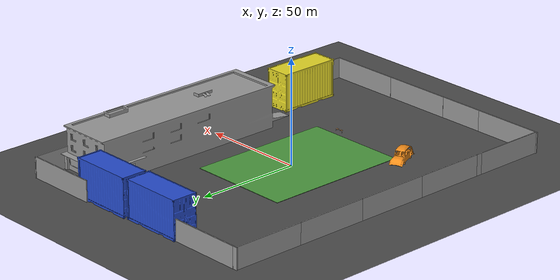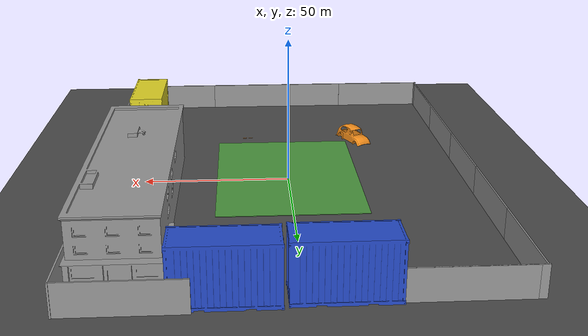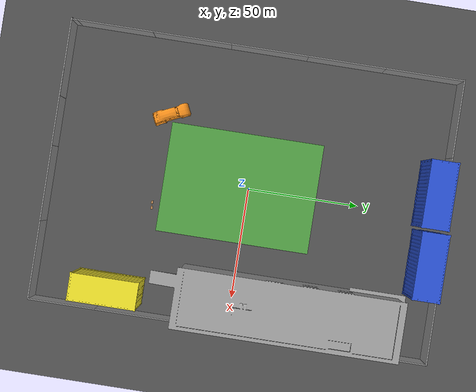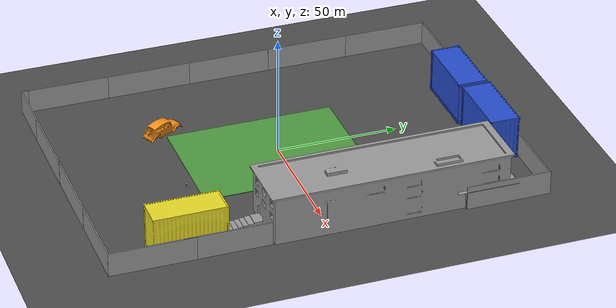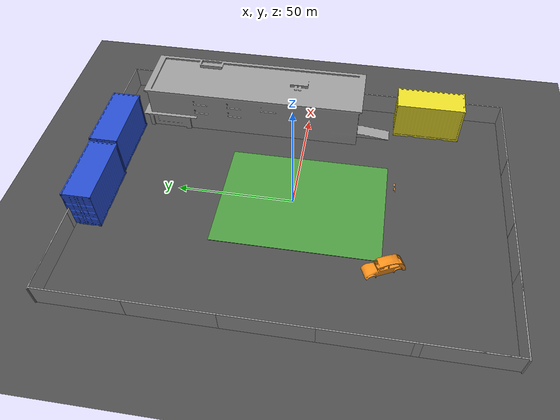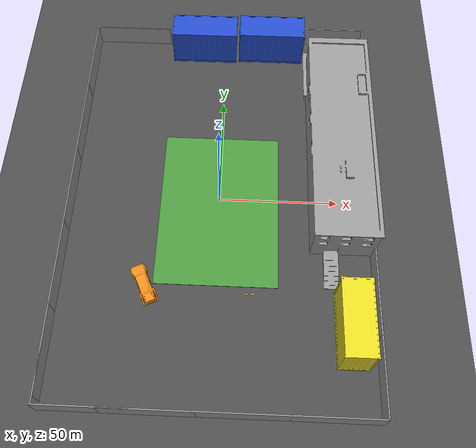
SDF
<sdf version="1.6">
 <world name="default">
  <light name="sun" type="directional">
   <pose>0 0 10 0 -0 0</pose>
   <diffuse>0.8 0.8 0.8 1</diffuse>
   <specular>0.2 0.2 0.2 1</specular>
   <attenuation>
    <range>1000</range>
    <constant>0.9</constant>
    <linear>0.01</linear>
    <quadratic>0.001</quadratic>
   </attenuation>
   <direction>-0.5 0.1 -0.9</direction>
  </light>
  <model name="ground_plane">
   <static>1</static>
   <link name="link">
    <collision name="collision">
     <geometry><plane><normal>0 0 1</normal><size>40000 40000</size></plane></geometry>
     <surface>
      <contact><collide_bitmask>65535</collide_bitmask></contact>
      <friction><ode><mu>100</mu><mu2>50</mu2></ode></friction>
     </surface>
    </collision>
    <visual name="visual">
     <cast_shadows>0</cast_shadows>
     <geometry><plane><normal>0 0 1</normal><size>130 180</size></plane></geometry>
     <material>
      <script><uri>file://media/materials/scripts/gazebo.material</uri><name>Gazebo/Road</name></script>
     </material>
    </visual>
   </link>
  </model>
  <gravity>0 0 -9.8</gravity>
  <magnetic_field>6e-06 2.3e-05 -4.2e-05</magnetic_field>
  <physics name="default_physics" default="0" type="ode">
   <max_step_size>0.001</max_step_size>
   <real_time_factor>1</real_time_factor>
   <real_time_update_rate>1000</real_time_update_rate>
  </physics>
  <scene><ambient>0.4 0.4 0.4 1</ambient><background>0.7 0.7 0.7 1</background><shadows>1</shadows></scene>
  <audio><device>default</device></audio>
  <spherical_coordinates>
   <surface_model>EARTH_WGS84</surface_model>
   <latitude_deg>0</latitude_deg>
   <longitude_deg>0</longitude_deg>
   <elevation>0</elevation>
   <heading_deg>0</heading_deg>
  </spherical_coordinates>
  <model name="grass_plane">
   <link name="link">
    <inertial>
     <mass>1</mass>
     <inertia><ixx>1</ixx><ixy>0</ixy><ixz>0</ixz><iyy>1</iyy><iyz>0</iyz><izz>1</izz></inertia>
    </inertial>
    <visual name="visual">
     <cast_shadows>0</cast_shadows>
     <geometry><box><size>50 70 0.2</size></box></geometry>
     <material>
      <script><uri>file://media/materials/scripts/gazebo.material</uri><name>Gazebo/Grass</name></script>
     </material>
    </visual>
    <collision name="collision">
     <geometry><box><size>10 30 0.2</size></box></geometry>
     <surface>
      <friction>
       <ode><mu>1</mu><mu2>1</mu2><fdir1>0 0 0</fdir1><slip1>0</slip1><slip2>0</slip2></ode>
       <torsional>
        <coefficient>1</coefficient>
        <patch_radius>0</patch_radius>
        <surface_radius>0</surface_radius>
        <use_patch_radius>1</use_patch_radius>
        <ode><slip>0</slip></ode>
       </torsional>
      </friction>
      <bounce><restitution_coefficient>0</restitution_coefficient><threshold>1e+06</threshold></bounce>
      <contact>
       <collide_without_contact>0</collide_without_contact>
       <collide_without_contact_bitmask>1</collide_without_contact_bitmask>
       <collide_bitmask>1</collide_bitmask>
       <ode>
        <soft_cfm>0</soft_cfm>
        <soft_erp>0.2</soft_erp>
        <kp>1e+13</kp>
        <kd>1</kd>
        <max_vel>0.01</max_vel>
        <min_depth>0</min_depth>
       </ode>
       <bullet>
        <split_impulse>1</split_impulse>
        <split_impulse_penetration_threshold>-0.01</split_impulse_penetration_threshold>
        <soft_cfm>0</soft_cfm>
        <soft_erp>0.2</soft_erp>
        <kp>1e+13</kp>
        <kd>1</kd>
       </bullet>
      </contact>
     </surface>
    </collision>
   </link>
   <static>1</static>
   <pose>0.093866 -3.92151 0 0 -0 0</pose>
  </model>
  <atmosphere type="adiabatic"/>
  <model name="table">
   <static>1</static>
   <link name="link">
    <collision name="surface">
     <pose>0 0 1 0 -0 0</pose>
     <geometry><box><size>1.5 0.8 0.03</size></box></geometry>
     <surface><friction><ode><mu>0.6</mu><mu2>0.6</mu2></ode></friction></surface>
    </collision>
    <visual name="visual1">
     <pose>0 0 1 0 -0 0</pose>
     <geometry><box><size>1.5 0.8 0.03</size></box></geometry>
     <material>
      <script><uri>file://media/materials/scripts/gazebo.material</uri><name>Gazebo/Wood</name></script>
     </material>
    </visual>
    <collision name="front_left_leg">
     <pose>0.68 0.38 0.5 0 -0 0</pose>
     <geometry><cylinder><radius>0.02</radius><length>1</length></cylinder></geometry>
    </collision>
    <visual name="front_left_leg">
     <pose>0.68 0.38 0.5 0 -0 0</pose>
     <geometry><cylinder><radius>0.02</radius><length>1</length></cylinder></geometry>
     <material>
      <script><uri>file://media/materials/scripts/gazebo.material</uri><name>Gazebo/Grey</name></script>
     </material>
    </visual>
    <collision name="front_right_leg">
     <pose>0.68 -0.38 0.5 0 -0 0</pose>
     <geometry><cylinder><radius>0.02</radius><length>1</length></cylinder></geometry>
    </collision>
    <visual name="front_right_leg">
     <pose>0.68 -0.38 0.5 0 -0 0</pose>
     <geometry><cylinder><radius>0.02</radius><length>1</length></cylinder></geometry>
     <material>
      <script><uri>file://media/materials/scripts/gazebo.material</uri><name>Gazebo/Grey</name></script>
     </material>
    </visual>
    <collision name="back_right_leg">
     <pose>-0.68 -0.38 0.5 0 -0 0</pose>
     <geometry><cylinder><radius>0.02</radius><length>1</length></cylinder></geometry>
    </collision>
    <visual name="back_right_leg">
     <pose>-0.68 -0.38 0.5 0 -0 0</pose>
     <geometry><cylinder><radius>0.02</radius><length>1</length></cylinder></geometry>
     <material>
      <script><uri>file://media/materials/scripts/gazebo.material</uri><name>Gazebo/Grey</name></script>
     </material>
    </visual>
    <collision name="back_left_leg">
     <pose>-0.68 0.38 0.5 0 -0 0</pose>
     <geometry><cylinder><radius>0.02</radius><length>1</length></cylinder></geometry>
    </collision>
    <visual name="back_left_leg">
     <pose>-0.68 0.38 0.5 0 -0 0</pose>
     <geometry><cylinder><radius>0.02</radius><length>1</length></cylinder></geometry>
     <material>
      <script><uri>file://media/materials/scripts/gazebo.material</uri><name>Gazebo/Grey</name></script>
     </material>
    </visual>
   </link>
   <pose>15.0111 -42.1076 0 0 -0 0</pose>
  </model>
  <model name="table_0">
   <static>1</static>
   <link name="link">
    <collision name="surface">
     <pose>0 0 1 0 -0 0</pose>
     <geometry><box><size>1.5 0.8 0.03</size></box></geometry>
     <surface><friction><ode><mu>0.6</mu><mu2>0.6</mu2></ode></friction></surface>
    </collision>
    <visual name="visual1">
     <pose>0 0 1 0 -0 0</pose>
     <geometry><box><size>1.5 0.8 0.03</size></box></geometry>
     <material>
      <script><uri>file://media/materials/scripts/gazebo.material</uri><name>Gazebo/Wood</name></script>
     </material>
    </visual>
    <collision name="front_left_leg">
     <pose>0.68 0.38 0.5 0 -0 0</pose>
     <geometry><cylinder><radius>0.02</radius><length>1</length></cylinder></geometry>
    </collision>
    <visual name="front_left_leg">
     <pose>0.68 0.38 0.5 0 -0 0</pose>
     <geometry><cylinder><radius>0.02</radius><length>1</length></cylinder></geometry>
     <material>
      <script><uri>file://media/materials/scripts/gazebo.material</uri><name>Gazebo/Grey</name></script>
     </material>
    </visual>
    <collision name="front_right_leg">
     <pose>0.68 -0.38 0.5 0 -0 0</pose>
     <geometry><cylinder><radius>0.02</radius><length>1</length></cylinder></geometry>
    </collision>
    <visual name="front_right_leg">
     <pose>0.68 -0.38 0.5 0 -0 0</pose>
     <geometry><cylinder><radius>0.02</radius><length>1</length></cylinder></geometry>
     <material>
      <script><uri>file://media/materials/scripts/gazebo.material</uri><name>Gazebo/Grey</name></script>
     </material>
    </visual>
    <collision name="back_right_leg">
     <pose>-0.68 -0.38 0.5 0 -0 0</pose>
     <geometry><cylinder><radius>0.02</radius><length>1</length></cylinder></geometry>
    </collision>
    <visual name="back_right_leg">
     <pose>-0.68 -0.38 0.5 0 -0 0</pose>
     <geometry><cylinder><radius>0.02</radius><length>1</length></cylinder></geometry>
     <material>
      <script><uri>file://media/materials/scripts/gazebo.material</uri><name>Gazebo/Grey</name></script>
     </material>
    </visual>
    <collision name="back_left_leg">
     <pose>-0.68 0.38 0.5 0 -0 0</pose>
     <geometry><cylinder><radius>0.02</radius><length>1</length></cylinder></geometry>
    </collision>
    <visual name="back_left_leg">
     <pose>-0.68 0.38 0.5 0 -0 0</pose>
     <geometry><cylinder><radius>0.02</radius><length>1</length></cylinder></geometry>
     <material>
      <script><uri>file://media/materials/scripts/gazebo.material</uri><name>Gazebo/Grey</name></script>
     </material>
    </visual>
   </link>
   <pose>12.6248 -42.2786 0 0 -0 0</pose>
  </model>
  <model name="building">
   <link name="old_building_base">
    <pose>0 0 5 0 -0 0</pose>
    <inertial>
     <mass>500000</mass>
     <inertia>
      <ixx>6.71748</ixx>
      <ixy>2.148e-05</ixy>
      <ixz>-2.4e-07</ixz>
      <iyy>6.71748</iyy>
      <iyz>-0.171807</iyz>
      <izz>6.71748</izz>
     </inertia>
    </inertial>
    <collision name="old_building_base_fixed_joint_lump__collision_collision">
     <geometry>
      <mesh>
       <scale>15 8 4</scale>
       <uri>/home/ana/catkin_ws/src/frontier_exploration_3d/models/old_building/meshes/building.dae</uri>
      </mesh>
     </geometry>
    </collision>
    <visual name="old_building_base_visual">
     <geometry>
      <mesh>
       <scale>15 8 4</scale>
       <uri>/home/ana/catkin_ws/src/frontier_exploration_3d/models/old_building/meshes/building.dae</uri>
      </mesh>
     </geometry>
     <material>
      <script><name>Gazebo/Grey</name><uri>file://media/materials/scripts/gazebo.material</uri></script>
     </material>
    </visual>
   </link>
   <joint name="joint_old_building_base" type="fixed">
    <child>old_building_base</child>
    <parent>world</parent>
   </joint>
   <static>1</static>
   <pose>54.9849 8.9696 0 0 0 -1.57</pose>
  </model>
  <model name="container">
   <link name="container_base">
    <pose>0 0 0.01 0 -0 0</pose>
    <inertial>
     <mass>500</mass>
     <inertia>
      <ixx>6.71748</ixx>
      <ixy>2.148e-05</ixy>
      <ixz>0</ixz>
      <iyy>6.71748</iyy>
      <iyz>0</iyz>
      <izz>6.71748</izz>
     </inertia>
    </inertial>
    <visual name="container_base_visual">
     <geometry>
      <mesh>
       <scale>5 5 7</scale>
       <uri>/home/ana/catkin_ws/src/frontier_exploration_3d/models/container/meshes/container.dae</uri>
      </mesh>
     </geometry>
     <material>
      <script><name>Gazebo/Blue</name><uri>file://media/materials/scripts/gazebo.material</uri></script>
      <shader type="pixel"><normal_map>__default__</normal_map></shader>
      <ambient>0 0 1 1</ambient>
      <diffuse>0 0 1 1</diffuse>
      <specular>0.1 0.1 0.1 1</specular>
      <emissive>0 0 0 1</emissive>
     </material>
    </visual>
    <collision name="container_base_fixed_joint_lump__collision_collision">
     <geometry>
      <mesh>
       <uri>/home/ana/catkin_ws/src/frontier_exploration_3d/models/container/meshes/container.dae</uri>
       <scale>5 5 7</scale>
      </mesh>
     </geometry>
     <surface>
      <friction>
       <ode><mu>1</mu><mu2>1</mu2><fdir1>0 0 0</fdir1><slip1>0</slip1><slip2>0</slip2></ode>
       <torsional>
        <coefficient>1</coefficient>
        <patch_radius>0</patch_radius>
        <surface_radius>0</surface_radius>
        <use_patch_radius>1</use_patch_radius>
        <ode><slip>0</slip></ode>
       </torsional>
      </friction>
      <bounce><restitution_coefficient>0</restitution_coefficient><threshold>1e+06</threshold></bounce>
      <contact>
       <collide_without_contact>0</collide_without_contact>
       <collide_without_contact_bitmask>1</collide_without_contact_bitmask>
       <collide_bitmask>1</collide_bitmask>
       <ode>
        <soft_cfm>0</soft_cfm>
        <soft_erp>0.2</soft_erp>
        <kp>1e+13</kp>
        <kd>1</kd>
        <max_vel>0.01</max_vel>
        <min_depth>0</min_depth>
       </ode>
       <bullet>
        <split_impulse>1</split_impulse>
        <split_impulse_penetration_threshold>-0.01</split_impulse_penetration_threshold>
        <soft_cfm>0</soft_cfm>
        <soft_erp>0.2</soft_erp>
        <kp>1e+13</kp>
        <kd>1</kd>
       </bullet>
      </contact>
     </surface>
    </collision>
   </link>
   <static>1</static>
   <pose>6.14881 76.4053 0 0 -0 0</pose>
  </model>
  <model name="container1">
   <link name="container_base">
    <pose>0 0 0.01 0 -0 0</pose>
    <inertial>
     <mass>500</mass>
     <inertia>
      <ixx>6.71748</ixx>
      <ixy>2.148e-05</ixy>
      <ixz>0</ixz>
      <iyy>6.71748</iyy>
      <iyz>0</iyz>
      <izz>6.71748</izz>
     </inertia>
    </inertial>
    <visual name="container_base_visual">
     <geometry>
      <mesh>
       <scale>5 5 7</scale>
       <uri>/home/ana/catkin_ws/src/frontier_exploration_3d/models/container/meshes/container.dae</uri>
      </mesh>
     </geometry>
     <material>
      <script><name>Gazebo/Yellow</name><uri>file://media/materials/scripts/gazebo.material</uri></script>
      <shader type="pixel"><normal_map>__default__</normal_map></shader>
      <ambient>1 1 0 1</ambient>
      <diffuse>1 1 0 1</diffuse>
      <emissive>0 0 0 1</emissive>
     </material>
    </visual>
    <collision name="container_base_fixed_joint_lump__collision_collision">
     <geometry>
      <mesh>
       <uri>/home/ana/catkin_ws/src/frontier_exploration_3d/models/container/meshes/container.dae</uri>
       <scale>5 5 7</scale>
      </mesh>
     </geometry>
     <surface>
      <friction>
       <ode><mu>1</mu><mu2>1</mu2><fdir1>0 0 0</fdir1><slip1>0</slip1><slip2>0</slip2></ode>
       <torsional>
        <coefficient>1</coefficient>
        <patch_radius>0</patch_radius>
        <surface_radius>0</surface_radius>
        <use_patch_radius>1</use_patch_radius>
        <ode><slip>0</slip></ode>
       </torsional>
      </friction>
      <bounce><restitution_coefficient>0</restitution_coefficient><threshold>1e+06</threshold></bounce>
      <contact>
       <collide_without_contact>0</collide_without_contact>
       <collide_without_contact_bitmask>1</collide_without_contact_bitmask>
       <collide_bitmask>1</collide_bitmask>
       <ode>
        <soft_cfm>0</soft_cfm>
        <soft_erp>0.2</soft_erp>
        <kp>1e+13</kp>
        <kd>1</kd>
        <max_vel>0.01</max_vel>
        <min_depth>0</min_depth>
       </ode>
       <bullet>
        <split_impulse>1</split_impulse>
        <split_impulse_penetration_threshold>-0.01</split_impulse_penetration_threshold>
        <soft_cfm>0</soft_cfm>
        <soft_erp>0.2</soft_erp>
        <kp>1e+13</kp>
        <kd>1</kd>
       </bullet>
      </contact>
     </surface>
    </collision>
   </link>
   <static>1</static>
   <pose>46.9831 -40.0571 0 0 0 -1.56956</pose>
  </model>
  <model name="container_clone">
   <link name="container_base">
    <pose>0 0 0.01 0 -0 0</pose>
    <inertial>
     <mass>500</mass>
     <inertia>
      <ixx>6.71748</ixx>
      <ixy>2.148e-05</ixy>
      <ixz>0</ixz>
      <iyy>6.71748</iyy>
      <iyz>0</iyz>
      <izz>6.71748</izz>
     </inertia>
    </inertial>
    <visual name="container_base_visual">
     <geometry>
      <mesh>
       <scale>5 5 7</scale>
       <uri>/home/ana/catkin_ws/src/frontier_exploration_3d/models/container/meshes/container.dae</uri>
      </mesh>
     </geometry>
     <material>
      <script><name>Gazebo/Blue</name><uri>file://media/materials/scripts/gazebo.material</uri></script>
      <shader type="pixel"><normal_map>__default__</normal_map></shader>
      <ambient>0 0 1 1</ambient>
      <diffuse>0 0 1 1</diffuse>
      <specular>0.1 0.1 0.1 1</specular>
      <emissive>0 0 0 1</emissive>
     </material>
    </visual>
    <collision name="container_base_fixed_joint_lump__collision_collision">
     <geometry>
      <mesh>
       <uri>/home/ana/catkin_ws/src/frontier_exploration_3d/models/container/meshes/container.dae</uri>
       <scale>5 5 7</scale>
      </mesh>
     </geometry>
     <surface>
      <friction>
       <ode><mu>1</mu><mu2>1</mu2><fdir1>0 0 0</fdir1><slip1>0</slip1><slip2>0</slip2></ode>
       <torsional>
        <coefficient>1</coefficient>
        <patch_radius>0</patch_radius>
        <surface_radius>0</surface_radius>
        <use_patch_radius>1</use_patch_radius>
        <ode><slip>0</slip></ode>
       </torsional>
      </friction>
      <bounce><restitution_coefficient>0</restitution_coefficient><threshold>1e+06</threshold></bounce>
      <contact>
       <collide_without_contact>0</collide_without_contact>
       <collide_without_contact_bitmask>1</collide_without_contact_bitmask>
       <collide_bitmask>1</collide_bitmask>
       <ode>
        <soft_cfm>0</soft_cfm>
        <soft_erp>0.2</soft_erp>
        <kp>1e+13</kp>
        <kd>1</kd>
        <max_vel>0.01</max_vel>
        <min_depth>0</min_depth>
       </ode>
       <bullet>
        <split_impulse>1</split_impulse>
        <split_impulse_penetration_threshold>-0.01</split_impulse_penetration_threshold>
        <soft_cfm>0</soft_cfm>
        <soft_erp>0.2</soft_erp>
        <kp>1e+13</kp>
        <kd>1</kd>
       </bullet>
      </contact>
     </surface>
    </collision>
   </link>
   <static>1</static>
   <pose>-25.1244 75.6261 0 0 -0 0</pose>
  </model>
  <model name="wall1_clone_clone">
   <link name="link">
    <enable_wind>1</enable_wind>
    <inertial>
     <mass>1</mass>
     <inertia><ixx>1</ixx><ixy>0</ixy><ixz>0</ixz><iyy>1</iyy><iyz>0</iyz><izz>1</izz></inertia>
    </inertial>
    <visual name="visual">
     <cast_shadows>0</cast_shadows>
     <geometry><box><size>35 0.5 10</size></box></geometry>
     <material>
      <script>
       <uri>model://grey_wall/materials/scripts</uri>
       <uri>model://grey_wall/materials/textures</uri>
       <name>vrc/grey_wall</name>
      </script>
      <shader type="pixel"><normal_map>__default__</normal_map></shader>
      <ambient>1 1 1 1</ambient>
      <diffuse>1 1 1 1</diffuse>
      <specular>0 0 0 1</specular>
      <emissive>0 0 0 1</emissive>
     </material>
    </visual>
    <collision name="collision">
     <geometry><box><size>35 0.5 10</size></box></geometry>
     <surface>
      <friction>
       <ode><mu>1</mu><mu2>1</mu2><fdir1>0 0 0</fdir1><slip1>0</slip1><slip2>0</slip2></ode>
       <torsional>
        <coefficient>1</coefficient>
        <patch_radius>0</patch_radius>
        <surface_radius>0</surface_radius>
        <use_patch_radius>1</use_patch_radius>
        <ode><slip>0</slip></ode>
       </torsional>
      </friction>
      <bounce><restitution_coefficient>0</restitution_coefficient><threshold>1e+06</threshold></bounce>
      <contact>
       <collide_without_contact>0</collide_without_contact>
       <collide_without_contact_bitmask>1</collide_without_contact_bitmask>
       <collide_bitmask>1</collide_bitmask>
       <ode>
        <soft_cfm>0</soft_cfm>
        <soft_erp>0.2</soft_erp>
        <kp>1e+13</kp>
        <kd>1</kd>
        <max_vel>0.01</max_vel>
        <min_depth>0</min_depth>
       </ode>
       <bullet>
        <split_impulse>1</split_impulse>
        <split_impulse_penetration_threshold>-0.01</split_impulse_penetration_threshold>
        <soft_cfm>0</soft_cfm>
        <soft_erp>0.2</soft_erp>
        <kp>1e+13</kp>
        <kd>1</kd>
       </bullet>
      </contact>
     </surface>
    </collision>
   </link>
   <static>1</static>
   <pose>-45.0044 86.7474 5 0 -0 0</pose>
  </model>
  <model name="wall1_clone_clone_0">
   <link name="link">
    <enable_wind>1</enable_wind>
    <inertial>
     <mass>1</mass>
     <inertia><ixx>1</ixx><ixy>0</ixy><ixz>0</ixz><iyy>1</iyy><iyz>0</iyz><izz>1</izz></inertia>
    </inertial>
    <visual name="visual">
     <cast_shadows>0</cast_shadows>
     <geometry><box><size>35 0.5 10</size></box></geometry>
     <material>
      <script>
       <uri>model://grey_wall/materials/scripts</uri>
       <uri>model://grey_wall/materials/textures</uri>
       <name>vrc/grey_wall</name>
      </script>
      <shader type="pixel"><normal_map>__default__</normal_map></shader>
      <ambient>1 1 1 1</ambient>
      <diffuse>1 1 1 1</diffuse>
      <specular>0 0 0 1</specular>
      <emissive>0 0 0 1</emissive>
     </material>
    </visual>
    <collision name="collision">
     <geometry><box><size>35 0.5 10</size></box></geometry>
     <surface>
      <friction>
       <ode><mu>1</mu><mu2>1</mu2><fdir1>0 0 0</fdir1><slip1>0</slip1><slip2>0</slip2></ode>
       <torsional>
        <coefficient>1</coefficient>
        <patch_radius>0</patch_radius>
        <surface_radius>0</surface_radius>
        <use_patch_radius>1</use_patch_radius>
        <ode><slip>0</slip></ode>
       </torsional>
      </friction>
      <bounce><restitution_coefficient>0</restitution_coefficient><threshold>1e+06</threshold></bounce>
      <contact>
       <collide_without_contact>0</collide_without_contact>
       <collide_without_contact_bitmask>1</collide_without_contact_bitmask>
       <collide_bitmask>1</collide_bitmask>
       <ode>
        <soft_cfm>0</soft_cfm>
        <soft_erp>0.2</soft_erp>
        <kp>1e+13</kp>
        <kd>1</kd>
        <max_vel>0.01</max_vel>
        <min_depth>0</min_depth>
       </ode>
       <bullet>
        <split_impulse>1</split_impulse>
        <split_impulse_penetration_threshold>-0.01</split_impulse_penetration_threshold>
        <soft_cfm>0</soft_cfm>
        <soft_erp>0.2</soft_erp>
        <kp>1e+13</kp>
        <kd>1</kd>
       </bullet>
      </contact>
     </surface>
    </collision>
   </link>
   <static>1</static>
   <pose>-61.9101 69.2935 5 0 0 -1.57191</pose>
  </model>
  <model name="wall1_clone_clone_0_clone">
   <link name="link">
    <enable_wind>1</enable_wind>
    <inertial>
     <mass>1</mass>
     <inertia><ixx>1</ixx><ixy>0</ixy><ixz>0</ixz><iyy>1</iyy><iyz>0</iyz><izz>1</izz></inertia>
    </inertial>
    <visual name="visual">
     <cast_shadows>0</cast_shadows>
     <geometry><box><size>35 0.5 10</size></box></geometry>
     <material>
      <script>
       <uri>model://grey_wall/materials/scripts</uri>
       <uri>model://grey_wall/materials/textures</uri>
       <name>vrc/grey_wall</name>
      </script>
      <shader type="pixel"><normal_map>__default__</normal_map></shader>
      <ambient>1 1 1 1</ambient>
      <diffuse>1 1 1 1</diffuse>
      <specular>0 0 0 1</specular>
      <emissive>0 0 0 1</emissive>
     </material>
    </visual>
    <collision name="collision">
     <geometry><box><size>35 0.5 10</size></box></geometry>
     <surface>
      <friction>
       <ode><mu>1</mu><mu2>1</mu2><fdir1>0 0 0</fdir1><slip1>0</slip1><slip2>0</slip2></ode>
       <torsional>
        <coefficient>1</coefficient>
        <patch_radius>0</patch_radius>
        <surface_radius>0</surface_radius>
        <use_patch_radius>1</use_patch_radius>
        <ode><slip>0</slip></ode>
       </torsional>
      </friction>
      <bounce><restitution_coefficient>0</restitution_coefficient><threshold>1e+06</threshold></bounce>
      <contact>
       <collide_without_contact>0</collide_without_contact>
       <collide_without_contact_bitmask>1</collide_without_contact_bitmask>
       <collide_bitmask>1</collide_bitmask>
       <ode>
        <soft_cfm>0</soft_cfm>
        <soft_erp>0.2</soft_erp>
        <kp>1e+13</kp>
        <kd>1</kd>
        <max_vel>0.01</max_vel>
        <min_depth>0</min_depth>
       </ode>
       <bullet>
        <split_impulse>1</split_impulse>
        <split_impulse_penetration_threshold>-0.01</split_impulse_penetration_threshold>
        <soft_cfm>0</soft_cfm>
        <soft_erp>0.2</soft_erp>
        <kp>1e+13</kp>
        <kd>1</kd>
       </bullet>
      </contact>
     </surface>
    </collision>
   </link>
   <static>1</static>
   <pose>-61.9495 34.6526 5 0 0 -1.57191</pose>
  </model>
  <model name="wall1_clone_clone_0_clone_0">
   <link name="link">
    <enable_wind>1</enable_wind>
    <inertial>
     <mass>1</mass>
     <inertia><ixx>1</ixx><ixy>0</ixy><ixz>0</ixz><iyy>1</iyy><iyz>0</iyz><izz>1</izz></inertia>
    </inertial>
    <visual name="visual">
     <cast_shadows>0</cast_shadows>
     <geometry><box><size>35 0.5 10</size></box></geometry>
     <material>
      <script>
       <uri>model://grey_wall/materials/scripts</uri>
       <uri>model://grey_wall/materials/textures</uri>
       <name>vrc/grey_wall</name>
      </script>
      <shader type="pixel"><normal_map>__default__</normal_map></shader>
      <ambient>1 1 1 1</ambient>
      <diffuse>1 1 1 1</diffuse>
      <specular>0 0 0 1</specular>
      <emissive>0 0 0 1</emissive>
     </material>
    </visual>
    <collision name="collision">
     <geometry><box><size>35 0.5 10</size></box></geometry>
     <surface>
      <friction>
       <ode><mu>1</mu><mu2>1</mu2><fdir1>0 0 0</fdir1><slip1>0</slip1><slip2>0</slip2></ode>
       <torsional>
        <coefficient>1</coefficient>
        <patch_radius>0</patch_radius>
        <surface_radius>0</surface_radius>
        <use_patch_radius>1</use_patch_radius>
        <ode><slip>0</slip></ode>
       </torsional>
      </friction>
      <bounce><restitution_coefficient>0</restitution_coefficient><threshold>1e+06</threshold></bounce>
      <contact>
       <collide_without_contact>0</collide_without_contact>
       <collide_without_contact_bitmask>1</collide_without_contact_bitmask>
       <collide_bitmask>1</collide_bitmask>
       <ode>
        <soft_cfm>0</soft_cfm>
        <soft_erp>0.2</soft_erp>
        <kp>1e+13</kp>
        <kd>1</kd>
        <max_vel>0.01</max_vel>
        <min_depth>0</min_depth>
       </ode>
       <bullet>
        <split_impulse>1</split_impulse>
        <split_impulse_penetration_threshold>-0.01</split_impulse_penetration_threshold>
        <soft_cfm>0</soft_cfm>
        <soft_erp>0.2</soft_erp>
        <kp>1e+13</kp>
        <kd>1</kd>
       </bullet>
      </contact>
     </surface>
    </collision>
   </link>
   <static>1</static>
   <pose>-61.997 -0.05092 5 0 0 -1.57191</pose>
  </model>
  <model name="wall1_clone_clone_0_clone_1">
   <link name="link">
    <enable_wind>1</enable_wind>
    <inertial>
     <mass>1</mass>
     <inertia><ixx>1</ixx><ixy>0</ixy><ixz>0</ixz><iyy>1</iyy><iyz>0</iyz><izz>1</izz></inertia>
    </inertial>
    <visual name="visual">
     <cast_shadows>0</cast_shadows>
     <geometry><box><size>35 0.5 10</size></box></geometry>
     <material>
      <script>
       <uri>model://grey_wall/materials/scripts</uri>
       <uri>model://grey_wall/materials/textures</uri>
       <name>vrc/grey_wall</name>
      </script>
      <shader type="pixel"><normal_map>__default__</normal_map></shader>
      <ambient>1 1 1 1</ambient>
      <diffuse>1 1 1 1</diffuse>
      <specular>0 0 0 1</specular>
      <emissive>0 0 0 1</emissive>
     </material>
    </visual>
    <collision name="collision">
     <geometry><box><size>35 0.5 10</size></box></geometry>
     <surface>
      <friction>
       <ode><mu>1</mu><mu2>1</mu2><fdir1>0 0 0</fdir1><slip1>0</slip1><slip2>0</slip2></ode>
       <torsional>
        <coefficient>1</coefficient>
        <patch_radius>0</patch_radius>
        <surface_radius>0</surface_radius>
        <use_patch_radius>1</use_patch_radius>
        <ode><slip>0</slip></ode>
       </torsional>
      </friction>
      <bounce><restitution_coefficient>0</restitution_coefficient><threshold>1e+06</threshold></bounce>
      <contact>
       <collide_without_contact>0</collide_without_contact>
       <collide_without_contact_bitmask>1</collide_without_contact_bitmask>
       <collide_bitmask>1</collide_bitmask>
       <ode>
        <soft_cfm>0</soft_cfm>
        <soft_erp>0.2</soft_erp>
        <kp>1e+13</kp>
        <kd>1</kd>
        <max_vel>0.01</max_vel>
        <min_depth>0</min_depth>
       </ode>
       <bullet>
        <split_impulse>1</split_impulse>
        <split_impulse_penetration_threshold>-0.01</split_impulse_penetration_threshold>
        <soft_cfm>0</soft_cfm>
        <soft_erp>0.2</soft_erp>
        <kp>1e+13</kp>
        <kd>1</kd>
       </bullet>
      </contact>
     </surface>
    </collision>
   </link>
   <static>1</static>
   <pose>-62.0288 -34.8437 5 0 0 -1.57191</pose>
  </model>
  <model name="wall1_clone_clone_0_clone_2">
   <link name="link">
    <enable_wind>1</enable_wind>
    <inertial>
     <mass>1</mass>
     <inertia><ixx>1</ixx><ixy>0</ixy><ixz>0</ixz><iyy>1</iyy><iyz>0</iyz><izz>1</izz></inertia>
    </inertial>
    <visual name="visual">
     <cast_shadows>0</cast_shadows>
     <geometry><box><size>35 0.5 10</size></box></geometry>
     <material>
      <script>
       <uri>model://grey_wall/materials/scripts</uri>
       <uri>model://grey_wall/materials/textures</uri>
       <name>vrc/grey_wall</name>
      </script>
      <shader type="pixel"><normal_map>__default__</normal_map></shader>
      <ambient>1 1 1 1</ambient>
      <diffuse>1 1 1 1</diffuse>
      <specular>0 0 0 1</specular>
      <emissive>0 0 0 1</emissive>
     </material>
    </visual>
    <collision name="collision">
     <geometry><box><size>35 0.5 10</size></box></geometry>
     <surface>
      <friction>
       <ode><mu>1</mu><mu2>1</mu2><fdir1>0 0 0</fdir1><slip1>0</slip1><slip2>0</slip2></ode>
       <torsional>
        <coefficient>1</coefficient>
        <patch_radius>0</patch_radius>
        <surface_radius>0</surface_radius>
        <use_patch_radius>1</use_patch_radius>
        <ode><slip>0</slip></ode>
       </torsional>
      </friction>
      <bounce><restitution_coefficient>0</restitution_coefficient><threshold>1e+06</threshold></bounce>
      <contact>
       <collide_without_contact>0</collide_without_contact>
       <collide_without_contact_bitmask>1</collide_without_contact_bitmask>
       <collide_bitmask>1</collide_bitmask>
       <ode>
        <soft_cfm>0</soft_cfm>
        <soft_erp>0.2</soft_erp>
        <kp>1e+13</kp>
        <kd>1</kd>
        <max_vel>0.01</max_vel>
        <min_depth>0</min_depth>
       </ode>
       <bullet>
        <split_impulse>1</split_impulse>
        <split_impulse_penetration_threshold>-0.01</split_impulse_penetration_threshold>
        <soft_cfm>0</soft_cfm>
        <soft_erp>0.2</soft_erp>
        <kp>1e+13</kp>
        <kd>1</kd>
       </bullet>
      </contact>
     </surface>
    </collision>
   </link>
   <static>1</static>
   <pose>-62.0731 -68.5912 5 0 0 -1.57191</pose>
  </model>
  <model name="wall1_clone_clone_0_clone_3">
   <link name="link">
    <enable_wind>1</enable_wind>
    <inertial>
     <mass>1</mass>
     <inertia><ixx>1</ixx><ixy>0</ixy><ixz>0</ixz><iyy>1</iyy><iyz>0</iyz><izz>1</izz></inertia>
    </inertial>
    <visual name="visual">
     <cast_shadows>0</cast_shadows>
     <geometry><box><size>35 0.5 10</size></box></geometry>
     <material>
      <script>
       <uri>model://grey_wall/materials/scripts</uri>
       <uri>model://grey_wall/materials/textures</uri>
       <name>vrc/grey_wall</name>
      </script>
      <shader type="pixel"><normal_map>__default__</normal_map></shader>
      <ambient>1 1 1 1</ambient>
      <diffuse>1 1 1 1</diffuse>
      <specular>0 0 0 1</specular>
      <emissive>0 0 0 1</emissive>
     </material>
    </visual>
    <collision name="collision">
     <geometry><box><size>35 0.5 10</size></box></geometry>
     <surface>
      <friction>
       <ode><mu>1</mu><mu2>1</mu2><fdir1>0 0 0</fdir1><slip1>0</slip1><slip2>0</slip2></ode>
       <torsional>
        <coefficient>1</coefficient>
        <patch_radius>0</patch_radius>
        <surface_radius>0</surface_radius>
        <use_patch_radius>1</use_patch_radius>
        <ode><slip>0</slip></ode>
       </torsional>
      </friction>
      <bounce><restitution_coefficient>0</restitution_coefficient><threshold>1e+06</threshold></bounce>
      <contact>
       <collide_without_contact>0</collide_without_contact>
       <collide_without_contact_bitmask>1</collide_without_contact_bitmask>
       <collide_bitmask>1</collide_bitmask>
       <ode>
        <soft_cfm>0</soft_cfm>
        <soft_erp>0.2</soft_erp>
        <kp>1e+13</kp>
        <kd>1</kd>
        <max_vel>0.01</max_vel>
        <min_depth>0</min_depth>
       </ode>
       <bullet>
        <split_impulse>1</split_impulse>
        <split_impulse_penetration_threshold>-0.01</split_impulse_penetration_threshold>
        <soft_cfm>0</soft_cfm>
        <soft_erp>0.2</soft_erp>
        <kp>1e+13</kp>
        <kd>1</kd>
       </bullet>
      </contact>
     </surface>
    </collision>
   </link>
   <static>1</static>
   <pose>62.8276 -41.3887 5 0 0 -1.57191</pose>
  </model>
  <model name="wall1_clone_clone_0_clone_4">
   <link name="link">
    <enable_wind>1</enable_wind>
    <inertial>
     <mass>1</mass>
     <inertia><ixx>1</ixx><ixy>0</ixy><ixz>0</ixz><iyy>1</iyy><iyz>0</iyz><izz>1</izz></inertia>
    </inertial>
    <visual name="visual">
     <cast_shadows>0</cast_shadows>
     <geometry><box><size>35 0.5 10</size></box></geometry>
     <material>
      <script>
       <uri>model://grey_wall/materials/scripts</uri>
       <uri>model://grey_wall/materials/textures</uri>
       <name>vrc/grey_wall</name>
      </script>
      <shader type="pixel"><normal_map>__default__</normal_map></shader>
      <ambient>1 1 1 1</ambient>
      <diffuse>1 1 1 1</diffuse>
      <specular>0 0 0 1</specular>
      <emissive>0 0 0 1</emissive>
     </material>
    </visual>
    <collision name="collision">
     <geometry><box><size>35 0.5 10</size></box></geometry>
     <surface>
      <friction>
       <ode><mu>1</mu><mu2>1</mu2><fdir1>0 0 0</fdir1><slip1>0</slip1><slip2>0</slip2></ode>
       <torsional>
        <coefficient>1</coefficient>
        <patch_radius>0</patch_radius>
        <surface_radius>0</surface_radius>
        <use_patch_radius>1</use_patch_radius>
        <ode><slip>0</slip></ode>
       </torsional>
      </friction>
      <bounce><restitution_coefficient>0</restitution_coefficient><threshold>1e+06</threshold></bounce>
      <contact>
       <collide_without_contact>0</collide_without_contact>
       <collide_without_contact_bitmask>1</collide_without_contact_bitmask>
       <collide_bitmask>1</collide_bitmask>
       <ode>
        <soft_cfm>0</soft_cfm>
        <soft_erp>0.2</soft_erp>
        <kp>1e+13</kp>
        <kd>1</kd>
        <max_vel>0.01</max_vel>
        <min_depth>0</min_depth>
       </ode>
       <bullet>
        <split_impulse>1</split_impulse>
        <split_impulse_penetration_threshold>-0.01</split_impulse_penetration_threshold>
        <soft_cfm>0</soft_cfm>
        <soft_erp>0.2</soft_erp>
        <kp>1e+13</kp>
        <kd>1</kd>
       </bullet>
      </contact>
     </surface>
    </collision>
   </link>
   <static>1</static>
   <pose>62.8357 -71.4632 5 0 0 -1.57191</pose>
  </model>
  <model name="wall1_clone_clone_clone">
   <link name="link">
    <enable_wind>1</enable_wind>
    <inertial>
     <mass>1</mass>
     <inertia><ixx>1</ixx><ixy>0</ixy><ixz>0</ixz><iyy>1</iyy><iyz>0</iyz><izz>1</izz></inertia>
    </inertial>
    <visual name="visual">
     <cast_shadows>0</cast_shadows>
     <geometry><box><size>35 0.5 10</size></box></geometry>
     <material>
      <script>
       <uri>model://grey_wall/materials/scripts</uri>
       <uri>model://grey_wall/materials/textures</uri>
       <name>vrc/grey_wall</name>
      </script>
      <shader type="pixel"><normal_map>__default__</normal_map></shader>
      <ambient>1 1 1 1</ambient>
      <diffuse>1 1 1 1</diffuse>
      <specular>0 0 0 1</specular>
      <emissive>0 0 0 1</emissive>
     </material>
    </visual>
    <collision name="collision">
     <geometry><box><size>35 0.5 10</size></box></geometry>
     <surface>
      <friction>
       <ode><mu>1</mu><mu2>1</mu2><fdir1>0 0 0</fdir1><slip1>0</slip1><slip2>0</slip2></ode>
       <torsional>
        <coefficient>1</coefficient>
        <patch_radius>0</patch_radius>
        <surface_radius>0</surface_radius>
        <use_patch_radius>1</use_patch_radius>
        <ode><slip>0</slip></ode>
       </torsional>
      </friction>
      <bounce><restitution_coefficient>0</restitution_coefficient><threshold>1e+06</threshold></bounce>
      <contact>
       <collide_without_contact>0</collide_without_contact>
       <collide_without_contact_bitmask>1</collide_without_contact_bitmask>
       <collide_bitmask>1</collide_bitmask>
       <ode>
        <soft_cfm>0</soft_cfm>
        <soft_erp>0.2</soft_erp>
        <kp>1e+13</kp>
        <kd>1</kd>
        <max_vel>0.01</max_vel>
        <min_depth>0</min_depth>
       </ode>
       <bullet>
        <split_impulse>1</split_impulse>
        <split_impulse_penetration_threshold>-0.01</split_impulse_penetration_threshold>
        <soft_cfm>0</soft_cfm>
        <soft_erp>0.2</soft_erp>
        <kp>1e+13</kp>
        <kd>1</kd>
       </bullet>
      </contact>
     </surface>
    </collision>
   </link>
   <static>1</static>
   <pose>45.5042 -88.7374 5 0 -0 0</pose>
  </model>
  <model name="wall1_clone_clone_clone_0">
   <link name="link">
    <enable_wind>1</enable_wind>
    <inertial>
     <mass>1</mass>
     <inertia><ixx>1</ixx><ixy>0</ixy><ixz>0</ixz><iyy>1</iyy><iyz>0</iyz><izz>1</izz></inertia>
    </inertial>
    <visual name="visual">
     <cast_shadows>0</cast_shadows>
     <geometry><box><size>35 0.5 10</size></box></geometry>
     <material>
      <script>
       <uri>model://grey_wall/materials/scripts</uri>
       <uri>model://grey_wall/materials/textures</uri>
       <name>vrc/grey_wall</name>
      </script>
      <shader type="pixel"><normal_map>__default__</normal_map></shader>
      <ambient>1 1 1 1</ambient>
      <diffuse>1 1 1 1</diffuse>
      <specular>0 0 0 1</specular>
      <emissive>0 0 0 1</emissive>
     </material>
    </visual>
    <collision name="collision">
     <geometry><box><size>35 0.5 10</size></box></geometry>
     <surface>
      <friction>
       <ode><mu>1</mu><mu2>1</mu2><fdir1>0 0 0</fdir1><slip1>0</slip1><slip2>0</slip2></ode>
       <torsional>
        <coefficient>1</coefficient>
        <patch_radius>0</patch_radius>
        <surface_radius>0</surface_radius>
        <use_patch_radius>1</use_patch_radius>
        <ode><slip>0</slip></ode>
       </torsional>
      </friction>
      <bounce><restitution_coefficient>0</restitution_coefficient><threshold>1e+06</threshold></bounce>
      <contact>
       <collide_without_contact>0</collide_without_contact>
       <collide_without_contact_bitmask>1</collide_without_contact_bitmask>
       <collide_bitmask>1</collide_bitmask>
       <ode>
        <soft_cfm>0</soft_cfm>
        <soft_erp>0.2</soft_erp>
        <kp>1e+13</kp>
        <kd>1</kd>
        <max_vel>0.01</max_vel>
        <min_depth>0</min_depth>
       </ode>
       <bullet>
        <split_impulse>1</split_impulse>
        <split_impulse_penetration_threshold>-0.01</split_impulse_penetration_threshold>
        <soft_cfm>0</soft_cfm>
        <soft_erp>0.2</soft_erp>
        <kp>1e+13</kp>
        <kd>1</kd>
       </bullet>
      </contact>
     </surface>
    </collision>
   </link>
   <static>1</static>
   <pose>11.7564 -88.7753 5 0 -0 0</pose>
  </model>
  <model name="wall1_clone_clone_clone_1">
   <link name="link">
    <enable_wind>1</enable_wind>
    <inertial>
     <mass>1</mass>
     <inertia><ixx>1</ixx><ixy>0</ixy><ixz>0</ixz><iyy>1</iyy><iyz>0</iyz><izz>1</izz></inertia>
    </inertial>
    <visual name="visual">
     <cast_shadows>0</cast_shadows>
     <geometry><box><size>35 0.5 10</size></box></geometry>
     <material>
      <script>
       <uri>model://grey_wall/materials/scripts</uri>
       <uri>model://grey_wall/materials/textures</uri>
       <name>vrc/grey_wall</name>
      </script>
      <shader type="pixel"><normal_map>__default__</normal_map></shader>
      <ambient>1 1 1 1</ambient>
      <diffuse>1 1 1 1</diffuse>
      <specular>0 0 0 1</specular>
      <emissive>0 0 0 1</emissive>
     </material>
    </visual>
    <collision name="collision">
     <geometry><box><size>35 0.5 10</size></box></geometry>
     <surface>
      <friction>
       <ode><mu>1</mu><mu2>1</mu2><fdir1>0 0 0</fdir1><slip1>0</slip1><slip2>0</slip2></ode>
       <torsional>
        <coefficient>1</coefficient>
        <patch_radius>0</patch_radius>
        <surface_radius>0</surface_radius>
        <use_patch_radius>1</use_patch_radius>
        <ode><slip>0</slip></ode>
       </torsional>
      </friction>
      <bounce><restitution_coefficient>0</restitution_coefficient><threshold>1e+06</threshold></bounce>
      <contact>
       <collide_without_contact>0</collide_without_contact>
       <collide_without_contact_bitmask>1</collide_without_contact_bitmask>
       <collide_bitmask>1</collide_bitmask>
       <ode>
        <soft_cfm>0</soft_cfm>
        <soft_erp>0.2</soft_erp>
        <kp>1e+13</kp>
        <kd>1</kd>
        <max_vel>0.01</max_vel>
        <min_depth>0</min_depth>
       </ode>
       <bullet>
        <split_impulse>1</split_impulse>
        <split_impulse_penetration_threshold>-0.01</split_impulse_penetration_threshold>
        <soft_cfm>0</soft_cfm>
        <soft_erp>0.2</soft_erp>
        <kp>1e+13</kp>
        <kd>1</kd>
       </bullet>
      </contact>
     </surface>
    </collision>
   </link>
   <static>1</static>
   <pose>-22.0368 -88.8383 5 0 -0 0</pose>
  </model>
  <model name="wall1_clone_clone_clone_2">
   <link name="link">
    <enable_wind>1</enable_wind>
    <inertial>
     <mass>1</mass>
     <inertia><ixx>1</ixx><ixy>0</ixy><ixz>0</ixz><iyy>1</iyy><iyz>0</iyz><izz>1</izz></inertia>
    </inertial>
    <visual name="visual">
     <cast_shadows>0</cast_shadows>
     <geometry><box><size>35 0.5 10</size></box></geometry>
     <material>
      <script>
       <uri>model://grey_wall/materials/scripts</uri>
       <uri>model://grey_wall/materials/textures</uri>
       <name>vrc/grey_wall</name>
      </script>
      <shader type="pixel"><normal_map>__default__</normal_map></shader>
      <ambient>1 1 1 1</ambient>
      <diffuse>1 1 1 1</diffuse>
      <specular>0 0 0 1</specular>
      <emissive>0 0 0 1</emissive>
     </material>
    </visual>
    <collision name="collision">
     <geometry><box><size>35 0.5 10</size></box></geometry>
     <surface>
      <friction>
       <ode><mu>1</mu><mu2>1</mu2><fdir1>0 0 0</fdir1><slip1>0</slip1><slip2>0</slip2></ode>
       <torsional>
        <coefficient>1</coefficient>
        <patch_radius>0</patch_radius>
        <surface_radius>0</surface_radius>
        <use_patch_radius>1</use_patch_radius>
        <ode><slip>0</slip></ode>
       </torsional>
      </friction>
      <bounce><restitution_coefficient>0</restitution_coefficient><threshold>1e+06</threshold></bounce>
      <contact>
       <collide_without_contact>0</collide_without_contact>
       <collide_without_contact_bitmask>1</collide_without_contact_bitmask>
       <collide_bitmask>1</collide_bitmask>
       <ode>
        <soft_cfm>0</soft_cfm>
        <soft_erp>0.2</soft_erp>
        <kp>1e+13</kp>
        <kd>1</kd>
        <max_vel>0.01</max_vel>
        <min_depth>0</min_depth>
       </ode>
       <bullet>
        <split_impulse>1</split_impulse>
        <split_impulse_penetration_threshold>-0.01</split_impulse_penetration_threshold>
        <soft_cfm>0</soft_cfm>
        <soft_erp>0.2</soft_erp>
        <kp>1e+13</kp>
        <kd>1</kd>
       </bullet>
      </contact>
     </surface>
    </collision>
   </link>
   <static>1</static>
   <pose>-45.3658 -88.7631 5 0 -0 0</pose>
  </model>
  <model name="wall1_clone_clone_0_clone_2_clone">
   <link name="link">
    <enable_wind>1</enable_wind>
    <inertial>
     <mass>1</mass>
     <inertia><ixx>1</ixx><ixy>0</ixy><ixz>0</ixz><iyy>1</iyy><iyz>0</iyz><izz>1</izz></inertia>
    </inertial>
    <visual name="visual">
     <cast_shadows>0</cast_shadows>
     <geometry><box><size>35 0.5 10</size></box></geometry>
     <material>
      <script>
       <uri>model://grey_wall/materials/scripts</uri>
       <uri>model://grey_wall/materials/textures</uri>
       <name>vrc/grey_wall</name>
      </script>
      <shader type="pixel"><normal_map>__default__</normal_map></shader>
      <ambient>1 1 1 1</ambient>
      <diffuse>1 1 1 1</diffuse>
      <specular>0 0 0 1</specular>
      <emissive>0 0 0 1</emissive>
     </material>
    </visual>
    <collision name="collision">
     <geometry><box><size>35 0.5 10</size></box></geometry>
     <surface>
      <friction>
       <ode><mu>1</mu><mu2>1</mu2><fdir1>0 0 0</fdir1><slip1>0</slip1><slip2>0</slip2></ode>
       <torsional>
        <coefficient>1</coefficient>
        <patch_radius>0</patch_radius>
        <surface_radius>0</surface_radius>
        <use_patch_radius>1</use_patch_radius>
        <ode><slip>0</slip></ode>
       </torsional>
      </friction>
      <bounce><restitution_coefficient>0</restitution_coefficient><threshold>1e+06</threshold></bounce>
      <contact>
       <collide_without_contact>0</collide_without_contact>
       <collide_without_contact_bitmask>1</collide_without_contact_bitmask>
       <collide_bitmask>1</collide_bitmask>
       <ode>
        <soft_cfm>0</soft_cfm>
        <soft_erp>0.2</soft_erp>
        <kp>1e+13</kp>
        <kd>1</kd>
        <max_vel>0.01</max_vel>
        <min_depth>0</min_depth>
       </ode>
       <bullet>
        <split_impulse>1</split_impulse>
        <split_impulse_penetration_threshold>-0.01</split_impulse_penetration_threshold>
        <soft_cfm>0</soft_cfm>
        <soft_erp>0.2</soft_erp>
        <kp>1e+13</kp>
        <kd>1</kd>
       </bullet>
      </contact>
     </surface>
    </collision>
   </link>
   <static>1</static>
   <pose>-62.08 -71.4106 5 0 0 -1.57191</pose>
  </model>
  <model name="car">
   <link name="car_base">
    <pose>0 0 0.01 0 -0 0</pose>
    <inertial>
     <mass>500</mass>
     <inertia>
      <ixx>6.71748</ixx>
      <ixy>2.148e-05</ixy>
      <ixz>-2.4e-07</ixz>
      <iyy>6.71748</iyy>
      <iyz>-0.171807</iyz>
      <izz>6.71748</izz>
     </inertia>
    </inertial>
    <collision name="car_base_fixed_joint_lump__collision_collision">
     <geometry>
      <mesh>
       <scale>1 1 1</scale>
       <uri>/home/ana/catkin_ws/src/frontier_exploration_3d/models/car/meshes/rusted_car.dae</uri>
      </mesh>
     </geometry>
    </collision>
    <visual name="car_base_visual">
     <geometry>
      <mesh>
       <scale>1 1 1</scale>
       <uri>/home/ana/catkin_ws/src/frontier_exploration_3d/models/car/meshes/rusted_car.dae</uri>
      </mesh>
     </geometry>
     <material>
      <script><name>Gazebo/Orange</name><uri>file://media/materials/scripts/gazebo.material</uri></script>
     </material>
    </visual>
   </link>
   <joint name="joint_car_base" type="fixed"><child>car_base</child><parent>world</parent></joint>
   <static>1</static>
   <pose>-22.665 -36.3473 0 0 -0 2.01465</pose>
  </model>
  <model name="wall1_clone_clone_clone_3">
   <link name="link">
    <enable_wind>1</enable_wind>
    <inertial>
     <mass>1</mass>
     <inertia><ixx>1</ixx><ixy>0</ixy><ixz>0</ixz><iyy>1</iyy><iyz>0</iyz><izz>1</izz></inertia>
    </inertial>
    <visual name="visual">
     <cast_shadows>0</cast_shadows>
     <geometry><box><size>35 0.5 10</size></box></geometry>
     <material>
      <script>
       <uri>model://grey_wall/materials/scripts</uri>
       <uri>model://grey_wall/materials/textures</uri>
       <name>vrc/grey_wall</name>
      </script>
      <shader type="pixel"><normal_map>__default__</normal_map></shader>
      <ambient>1 1 1 1</ambient>
      <diffuse>1 1 1 1</diffuse>
      <specular>0 0 0 1</specular>
      <emissive>0 0 0 1</emissive>
     </material>
    </visual>
    <collision name="collision">
     <geometry><box><size>35 0.5 10</size></box></geometry>
     <surface>
      <friction>
       <ode><mu>1</mu><mu2>1</mu2><fdir1>0 0 0</fdir1><slip1>0</slip1><slip2>0</slip2></ode>
       <torsional>
        <coefficient>1</coefficient>
        <patch_radius>0</patch_radius>
        <surface_radius>0</surface_radius>
        <use_patch_radius>1</use_patch_radius>
        <ode><slip>0</slip></ode>
       </torsional>
      </friction>
      <bounce><restitution_coefficient>0</restitution_coefficient><threshold>1e+06</threshold></bounce>
      <contact>
       <collide_without_contact>0</collide_without_contact>
       <collide_without_contact_bitmask>1</collide_without_contact_bitmask>
       <collide_bitmask>1</collide_bitmask>
       <ode>
        <soft_cfm>0</soft_cfm>
        <soft_erp>0.2</soft_erp>
        <kp>1e+13</kp>
        <kd>1</kd>
        <max_vel>0.01</max_vel>
        <min_depth>0</min_depth>
       </ode>
       <bullet>
        <split_impulse>1</split_impulse>
        <split_impulse_penetration_threshold>-0.01</split_impulse_penetration_threshold>
        <soft_cfm>0</soft_cfm>
        <soft_erp>0.2</soft_erp>
        <kp>1e+13</kp>
        <kd>1</kd>
       </bullet>
      </contact>
     </surface>
    </collision>
   </link>
   <static>1</static>
   <pose>-42.6219 86.7691 5 0 -0 0</pose>
  </model>
  <model name="wall1_clone_clone_clone_4">
   <link name="link">
    <enable_wind>1</enable_wind>
    <inertial>
     <mass>1</mass>
     <inertia><ixx>1</ixx><ixy>0</ixy><ixz>0</ixz><iyy>1</iyy><iyz>0</iyz><izz>1</izz></inertia>
    </inertial>
    <visual name="visual">
     <cast_shadows>0</cast_shadows>
     <geometry><box><size>35 0.5 10</size></box></geometry>
     <material>
      <script>
       <uri>model://grey_wall/materials/scripts</uri>
       <uri>model://grey_wall/materials/textures</uri>
       <name>vrc/grey_wall</name>
      </script>
      <shader type="pixel"><normal_map>__default__</normal_map></shader>
      <ambient>1 1 1 1</ambient>
      <diffuse>1 1 1 1</diffuse>
      <specular>0 0 0 1</specular>
      <emissive>0 0 0 1</emissive>
     </material>
    </visual>
    <collision name="collision">
     <geometry><box><size>35 0.5 10</size></box></geometry>
     <surface>
      <friction>
       <ode><mu>1</mu><mu2>1</mu2><fdir1>0 0 0</fdir1><slip1>0</slip1><slip2>0</slip2></ode>
       <torsional>
        <coefficient>1</coefficient>
        <patch_radius>0</patch_radius>
        <surface_radius>0</surface_radius>
        <use_patch_radius>1</use_patch_radius>
        <ode><slip>0</slip></ode>
       </torsional>
      </friction>
      <bounce><restitution_coefficient>0</restitution_coefficient><threshold>1e+06</threshold></bounce>
      <contact>
       <collide_without_contact>0</collide_without_contact>
       <collide_without_contact_bitmask>1</collide_without_contact_bitmask>
       <collide_bitmask>1</collide_bitmask>
       <ode>
        <soft_cfm>0</soft_cfm>
        <soft_erp>0.2</soft_erp>
        <kp>1e+13</kp>
        <kd>1</kd>
        <max_vel>0.01</max_vel>
        <min_depth>0</min_depth>
       </ode>
       <bullet>
        <split_impulse>1</split_impulse>
        <split_impulse_penetration_threshold>-0.01</split_impulse_penetration_threshold>
        <soft_cfm>0</soft_cfm>
        <soft_erp>0.2</soft_erp>
        <kp>1e+13</kp>
        <kd>1</kd>
       </bullet>
      </contact>
     </surface>
    </collision>
   </link>
   <static>1</static>
   <pose>47.1545 89.4112 5 0 -0 0</pose>
  </model>
  <model name="wall1_clone_clone_0_clone_5">
   <link name="link">
    <enable_wind>1</enable_wind>
    <inertial>
     <mass>1</mass>
     <inertia><ixx>1</ixx><ixy>0</ixy><ixz>0</ixz><iyy>1</iyy><iyz>0</iyz><izz>1</izz></inertia>
    </inertial>
    <visual name="visual">
     <cast_shadows>0</cast_shadows>
     <geometry><box><size>35 0.5 10</size></box></geometry>
     <material>
      <script>
       <uri>model://grey_wall/materials/scripts</uri>
       <uri>model://grey_wall/materials/textures</uri>
       <name>vrc/grey_wall</name>
      </script>
      <shader type="pixel"><normal_map>__default__</normal_map></shader>
      <ambient>1 1 1 1</ambient>
      <diffuse>1 1 1 1</diffuse>
      <specular>0 0 0 1</specular>
      <emissive>0 0 0 1</emissive>
     </material>
    </visual>
    <collision name="collision">
     <geometry><box><size>35 0.5 10</size></box></geometry>
     <surface>
      <friction>
       <ode><mu>1</mu><mu2>1</mu2><fdir1>0 0 0</fdir1><slip1>0</slip1><slip2>0</slip2></ode>
       <torsional>
        <coefficient>1</coefficient>
        <patch_radius>0</patch_radius>
        <surface_radius>0</surface_radius>
        <use_patch_radius>1</use_patch_radius>
        <ode><slip>0</slip></ode>
       </torsional>
      </friction>
      <bounce><restitution_coefficient>0</restitution_coefficient><threshold>1e+06</threshold></bounce>
      <contact>
       <collide_without_contact>0</collide_without_contact>
       <collide_without_contact_bitmask>1</collide_without_contact_bitmask>
       <collide_bitmask>1</collide_bitmask>
       <ode>
        <soft_cfm>0</soft_cfm>
        <soft_erp>0.2</soft_erp>
        <kp>1e+13</kp>
        <kd>1</kd>
        <max_vel>0.01</max_vel>
        <min_depth>0</min_depth>
       </ode>
       <bullet>
        <split_impulse>1</split_impulse>
        <split_impulse_penetration_threshold>-0.01</split_impulse_penetration_threshold>
        <soft_cfm>0</soft_cfm>
        <soft_erp>0.2</soft_erp>
        <kp>1e+13</kp>
        <kd>1</kd>
       </bullet>
      </contact>
     </surface>
    </collision>
   </link>
   <static>1</static>
   <pose>64.6101 72.3736 5 0 0 -1.57191</pose>
  </model>
 </world>
</sdf>
